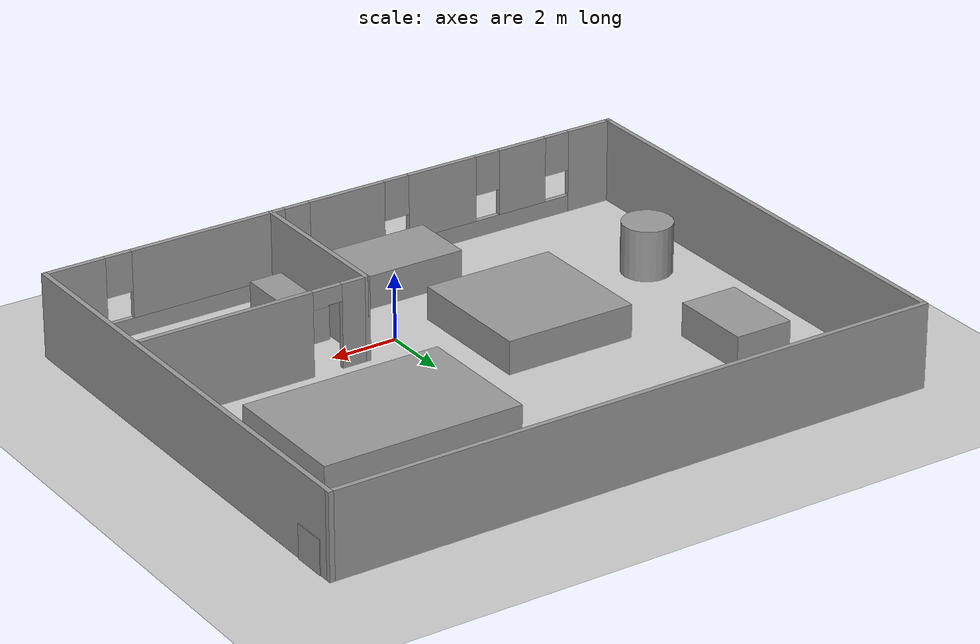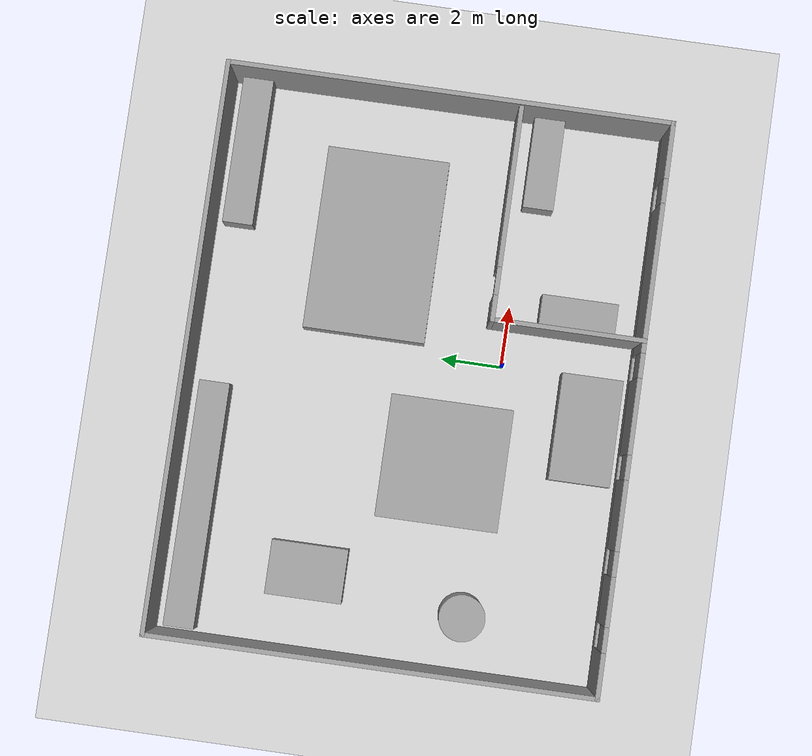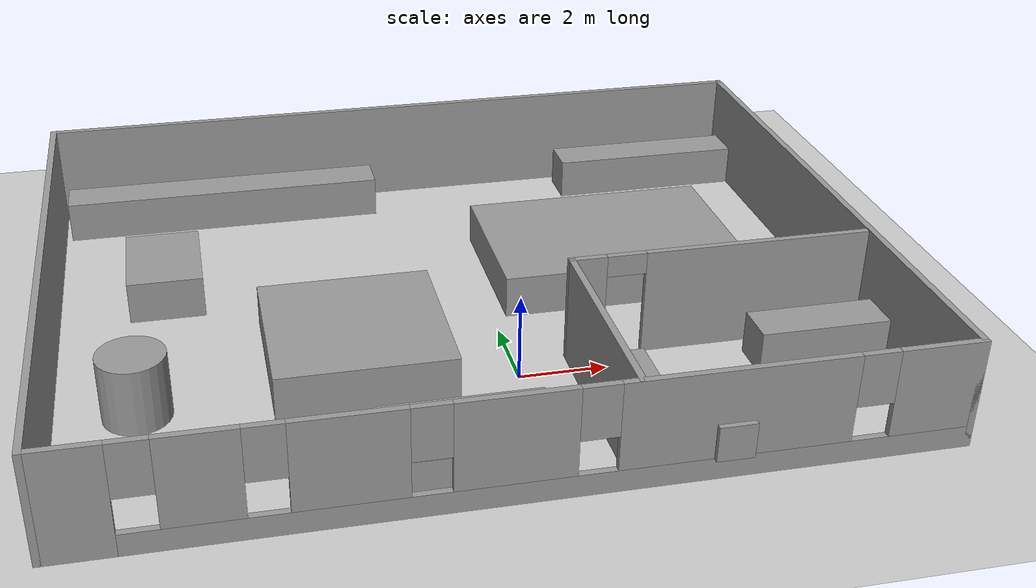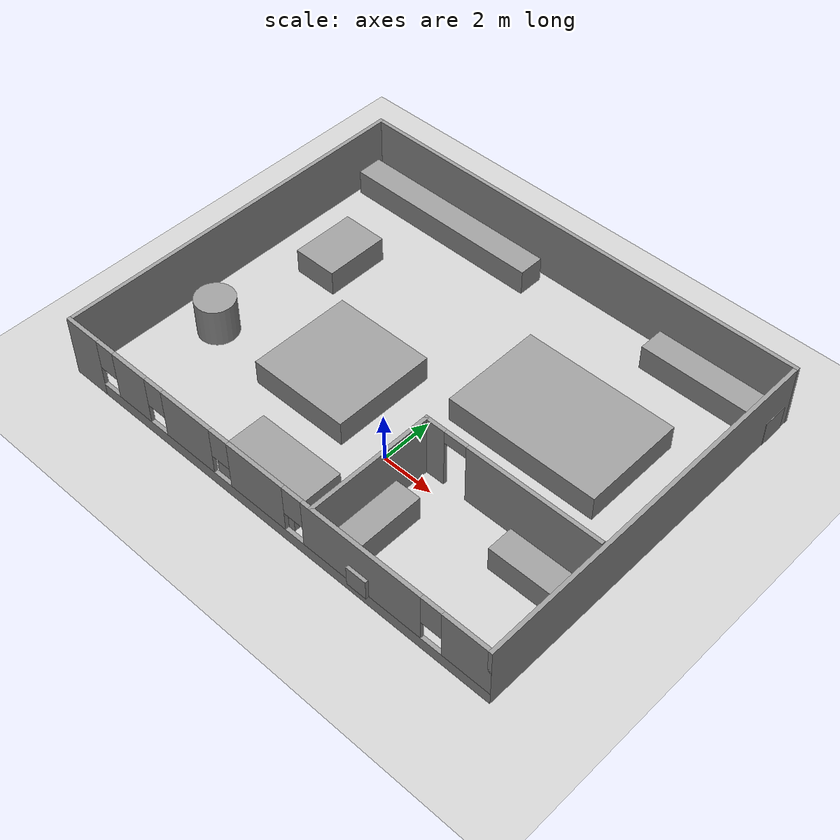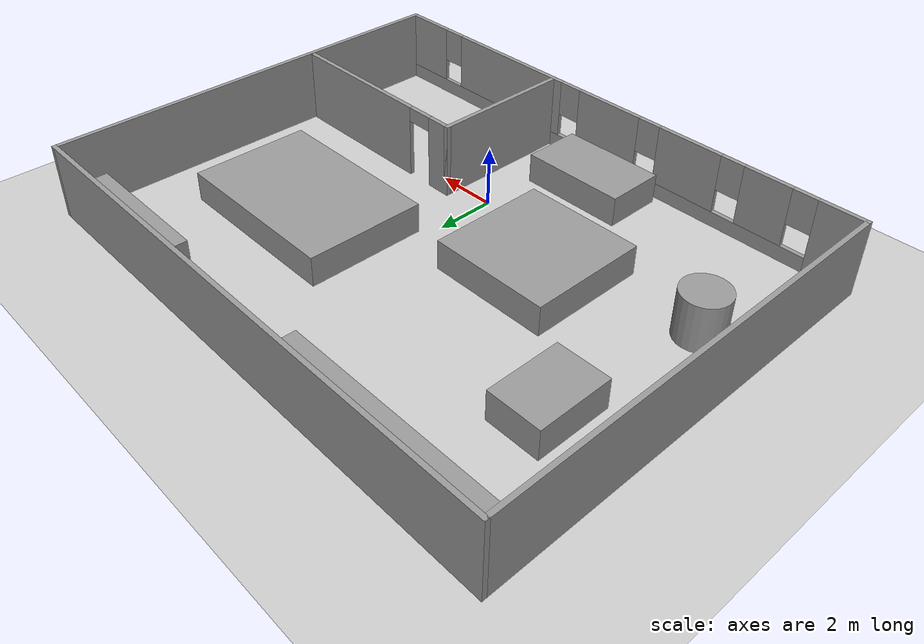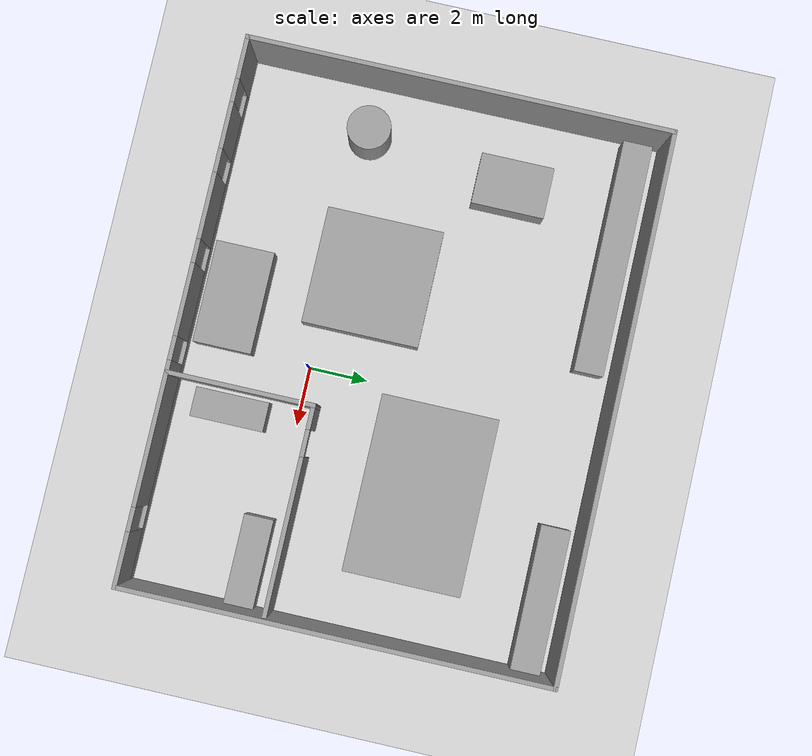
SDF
<sdf version="1.7">
 <world name="default">
  <light name="sun" type="directional">
   <pose>0 0 10 0 -0 0</pose>
   <diffuse>0.8 0.8 0.8 1</diffuse>
   <specular>0.2 0.2 0.2 1</specular>
   <attenuation>
    <range>1000</range>
    <constant>0.9</constant>
    <linear>0.01</linear>
    <quadratic>0.001</quadratic>
   </attenuation>
   <direction>-0.5 0.1 -0.9</direction>
   <spot><inner_angle>0</inner_angle><outer_angle>0</outer_angle><falloff>0</falloff></spot>
  </light>
  <model name="ground_plane">
   <static>1</static>
   <link name="link">
    <collision name="collision">
     <geometry><plane><normal>0 0 1</normal><size>100 100</size></plane></geometry>
     <surface>
      <contact><collide_bitmask>65535</collide_bitmask></contact>
      <friction><ode><mu>100</mu><mu2>50</mu2></ode></friction>
     </surface>
    </collision>
    <visual name="visual">
     <cast_shadows>0</cast_shadows>
     <geometry><plane><normal>0 0 1</normal><size>100 100</size></plane></geometry>
     <material>
      <script><uri>file://media/materials/scripts/gazebo.material</uri><name>Gazebo/Grey</name></script>
     </material>
    </visual>
   </link>
  </model>
  <gravity>0 0 -9.8</gravity>
  <magnetic_field>6e-06 2.3e-05 -4.2e-05</magnetic_field>
  <atmosphere type="adiabatic"/>
  <physics type="ode">
   <max_step_size>0.001</max_step_size>
   <real_time_factor>1</real_time_factor>
   <real_time_update_rate>1000</real_time_update_rate>
  </physics>
  <scene><ambient>0.4 0.4 0.4 1</ambient><background>0.7 0.7 0.7 1</background><shadows>1</shadows></scene>
  <spherical_coordinates>
   <surface_model>EARTH_WGS84</surface_model>
   <latitude_deg>0</latitude_deg>
   <longitude_deg>0</longitude_deg>
   <elevation>0</elevation>
   <heading_deg>0</heading_deg>
  </spherical_coordinates>
  <model name="Lab">
   <pose>-0.873509 2.90139 0 0 -0 0</pose>
   <link name="Wall_10">
    <collision name="Wall_10_Collision">
     <geometry><box><size>14.5 0.15 2.5</size></box></geometry>
     <pose>0 0 1.25 0 -0 0</pose>
    </collision>
    <visual name="Wall_10_Visual">
     <pose>0 0 1.25 0 -0 0</pose>
     <geometry><box><size>14.5 0.15 2.5</size></box></geometry>
     <material>
      <script><uri>file://media/materials/scripts/gazebo.material</uri><name>Gazebo/Grey</name></script>
      <ambient>0.701961 0.701961 0.701961 1</ambient>
     </material>
     <meta><layer>0</layer></meta>
    </visual>
    <pose>9.175 -0 0 0 -0 1.5708</pose>
   </link>
   <link name="Wall_11">
    <collision name="Wall_11_Collision">
     <geometry><box><size>18.5 0.15 2.5</size></box></geometry>
     <pose>0 0 1.25 0 -0 0</pose>
    </collision>
    <visual name="Wall_11_Visual">
     <pose>0 0 1.25 0 -0 0</pose>
     <geometry><box><size>18.5 0.15 2.5</size></box></geometry>
     <material>
      <script><uri>file://media/materials/scripts/gazebo.material</uri><name>Gazebo/Grey</name></script>
      <ambient>0.701961 0.701961 0.701961 1</ambient>
     </material>
     <meta><layer>0</layer></meta>
    </visual>
    <pose>0 7.175 0 0 -0 3.14159</pose>
   </link>
   <link name="Wall_13">
    <collision name="Wall_13_Collision">
     <geometry><box><size>5 0.15 2.5</size></box></geometry>
     <pose>0 0 1.25 0 -0 0</pose>
    </collision>
    <visual name="Wall_13_Visual">
     <pose>0 0 1.25 0 -0 0</pose>
     <geometry><box><size>5 0.15 2.5</size></box></geometry>
     <material>
      <script><uri>file://media/materials/scripts/gazebo.material</uri><name>Gazebo/Grey</name></script>
      <ambient>0.701961 0.701961 0.701961 1</ambient>
     </material>
     <meta><layer>0</layer></meta>
    </visual>
    <pose>2.14737 -4.73989 0 0 -0 1.5708</pose>
   </link>
   <link name="Wall_14">
    <pose>5.57236 -2.31489 0 0 -0 0</pose>
    <visual name="Wall_14_Visual_0">
     <pose>-3.06474 0 1.25 0 -0 0</pose>
     <geometry><box><size>0.870529 0.15 2.5</size></box></geometry>
     <material>
      <script><uri>file://media/materials/scripts/gazebo.material</uri><name>Gazebo/Grey</name></script>
      <ambient>0.701961 0.701961 0.701961 1</ambient>
     </material>
     <meta><layer>0</layer></meta>
    </visual>
    <collision name="Wall_14_Collision_0">
     <geometry><box><size>0.870529 0.15 2.5</size></box></geometry>
     <pose>-3.06474 0 1.25 0 -0 0</pose>
    </collision>
    <visual name="Wall_14_Visual_1">
     <pose>0.885265 0 1.25 0 -0 0</pose>
     <geometry><box><size>5.22947 0.15 2.5</size></box></geometry>
     <material>
      <script><uri>file://media/materials/scripts/gazebo.material</uri><name>Gazebo/Grey</name></script>
      <ambient>0.701961 0.701961 0.701961 1</ambient>
     </material>
     <meta><layer>0</layer></meta>
    </visual>
    <collision name="Wall_14_Collision_1">
     <geometry><box><size>5.22947 0.15 2.5</size></box></geometry>
     <pose>0.885265 0 1.25 0 -0 0</pose>
    </collision>
    <visual name="Wall_14_Visual_2">
     <pose>-2.17947 0 2.25 0 -0 0</pose>
     <geometry><box><size>0.9 0.15 0.5</size></box></geometry>
     <material>
      <script><uri>file://media/materials/scripts/gazebo.material</uri><name>Gazebo/Grey</name></script>
      <ambient>0.701961 0.701961 0.701961 1</ambient>
     </material>
     <meta><layer>0</layer></meta>
    </visual>
    <collision name="Wall_14_Collision_2">
     <geometry><box><size>0.9 0.15 0.5</size></box></geometry>
     <pose>-2.17947 0 2.25 0 -0 0</pose>
    </collision>
   </link>
   <link name="Wall_7">
    <collision name="Wall_7_Collision">
     <geometry><box><size>14.5 0.15 2.5</size></box></geometry>
     <pose>0 0 1.25 0 -0 0</pose>
    </collision>
    <visual name="Wall_7_Visual">
     <pose>0 0 1.25 0 -0 0</pose>
     <geometry><box><size>14.5 0.15 2.5</size></box></geometry>
     <material>
      <script><uri>file://media/materials/scripts/gazebo.material</uri><name>Gazebo/Grey</name></script>
      <ambient>0.701961 0.701961 0.701961 1</ambient>
     </material>
     <meta><layer>0</layer></meta>
    </visual>
    <pose>-9.175 -0 0 0 -0 -1.5708</pose>
   </link>
   <link name="Wall_9">
    <pose>0 -7.175 0 0 -0 0</pose>
    <visual name="Wall_9_Visual_0">
     <pose>-8.4928 0 1.25 0 -0 0</pose>
     <geometry><box><size>1.51439 0.15 2.5</size></box></geometry>
     <material>
      <script><uri>file://media/materials/scripts/gazebo.material</uri><name>Gazebo/Grey</name></script>
      <ambient>0.701961 0.701961 0.701961 1</ambient>
     </material>
     <meta><layer>0</layer></meta>
    </visual>
    <collision name="Wall_9_Collision_0">
     <geometry><box><size>1.51439 0.15 2.5</size></box></geometry>
     <pose>-8.4928 0 1.25 0 -0 0</pose>
    </collision>
    <visual name="Wall_9_Visual_1">
     <pose>0.757197 0 0.25 0 -0 0</pose>
     <geometry><box><size>16.9856 0.15 0.5</size></box></geometry>
     <material>
      <script><uri>file://media/materials/scripts/gazebo.material</uri><name>Gazebo/Grey</name></script>
      <ambient>0.701961 0.701961 0.701961 1</ambient>
     </material>
     <meta><layer>0</layer></meta>
    </visual>
    <collision name="Wall_9_Collision_1">
     <geometry><box><size>16.9856 0.15 0.5</size></box></geometry>
     <pose>0.757197 0 0.25 0 -0 0</pose>
    </collision>
    <visual name="Wall_9_Visual_2">
     <pose>-6.14259 0 1.5 0 -0 0</pose>
     <geometry><box><size>1.58604 0.15 2</size></box></geometry>
     <material>
      <script><uri>file://media/materials/scripts/gazebo.material</uri><name>Gazebo/Grey</name></script>
      <ambient>0.701961 0.701961 0.701961 1</ambient>
     </material>
     <meta><layer>0</layer></meta>
    </visual>
    <collision name="Wall_9_Collision_2">
     <geometry><box><size>1.58604 0.15 2</size></box></geometry>
     <pose>-6.14259 0 1.5 0 -0 0</pose>
    </collision>
    <visual name="Wall_9_Visual_3">
     <pose>-3.42006 0 1.5 0 -0 0</pose>
     <geometry><box><size>2.25902 0.15 2</size></box></geometry>
     <material>
      <script><uri>file://media/materials/scripts/gazebo.material</uri><name>Gazebo/Grey</name></script>
      <ambient>0.701961 0.701961 0.701961 1</ambient>
     </material>
     <meta><layer>0</layer></meta>
    </visual>
    <collision name="Wall_9_Collision_3">
     <geometry><box><size>2.25902 0.15 2</size></box></geometry>
     <pose>-3.42006 0 1.5 0 -0 0</pose>
    </collision>
    <visual name="Wall_9_Visual_4">
     <pose>-0.269264 0 1.5 0 -0 0</pose>
     <geometry><box><size>2.44256 0.15 2</size></box></geometry>
     <material>
      <script><uri>file://media/materials/scripts/gazebo.material</uri><name>Gazebo/Grey</name></script>
      <ambient>0.701961 0.701961 0.701961 1</ambient>
     </material>
     <meta><layer>0</layer></meta>
    </visual>
    <collision name="Wall_9_Collision_4">
     <geometry><box><size>2.44256 0.15 2</size></box></geometry>
     <pose>-0.269264 0 1.5 0 -0 0</pose>
    </collision>
    <visual name="Wall_9_Visual_5">
     <pose>4.16632 0 1.5 0 -0 0</pose>
     <geometry><box><size>4.8286 0.15 2</size></box></geometry>
     <material>
      <script><uri>file://media/materials/scripts/gazebo.material</uri><name>Gazebo/Grey</name></script>
      <ambient>0.701961 0.701961 0.701961 1</ambient>
     </material>
     <meta><layer>0</layer></meta>
    </visual>
    <collision name="Wall_9_Collision_5">
     <geometry><box><size>4.8286 0.15 2</size></box></geometry>
     <pose>4.16632 0 1.5 0 -0 0</pose>
    </collision>
    <visual name="Wall_9_Visual_6">
     <pose>8.31531 0 1.5 0 -0 0</pose>
     <geometry><box><size>1.86938 0.15 2</size></box></geometry>
     <material>
      <script><uri>file://media/materials/scripts/gazebo.material</uri><name>Gazebo/Grey</name></script>
      <ambient>0.701961 0.701961 0.701961 1</ambient>
     </material>
     <meta><layer>0</layer></meta>
    </visual>
    <collision name="Wall_9_Collision_6">
     <geometry><box><size>1.86938 0.15 2</size></box></geometry>
     <pose>8.31531 0 1.5 0 -0 0</pose>
    </collision>
    <visual name="Wall_9_Visual_7">
     <pose>-7.33561 0 1.9 0 -0 0</pose>
     <geometry><box><size>0.8 0.15 1.2</size></box></geometry>
     <material>
      <script><uri>file://media/materials/scripts/gazebo.material</uri><name>Gazebo/Grey</name></script>
      <ambient>0.701961 0.701961 0.701961 1</ambient>
     </material>
     <meta><layer>0</layer></meta>
    </visual>
    <collision name="Wall_9_Collision_7">
     <geometry><box><size>0.8 0.15 1.2</size></box></geometry>
     <pose>-7.33561 0 1.9 0 -0 0</pose>
    </collision>
    <visual name="Wall_9_Visual_8">
     <pose>-4.94957 0 1.9 0 -0 0</pose>
     <geometry><box><size>0.8 0.15 1.2</size></box></geometry>
     <material>
      <script><uri>file://media/materials/scripts/gazebo.material</uri><name>Gazebo/Grey</name></script>
      <ambient>0.701961 0.701961 0.701961 1</ambient>
     </material>
     <meta><layer>0</layer></meta>
    </visual>
    <collision name="Wall_9_Collision_8">
     <geometry><box><size>0.8 0.15 1.2</size></box></geometry>
     <pose>-4.94957 0 1.9 0 -0 0</pose>
    </collision>
    <visual name="Wall_9_Visual_9">
     <pose>-1.89055 0 1.9 0 -0 0</pose>
     <geometry><box><size>0.8 0.15 1.2</size></box></geometry>
     <material>
      <script><uri>file://media/materials/scripts/gazebo.material</uri><name>Gazebo/Grey</name></script>
      <ambient>0.701961 0.701961 0.701961 1</ambient>
     </material>
     <meta><layer>0</layer></meta>
    </visual>
    <collision name="Wall_9_Collision_9">
     <geometry><box><size>0.8 0.15 1.2</size></box></geometry>
     <pose>-1.89055 0 1.9 0 -0 0</pose>
    </collision>
    <visual name="Wall_9_Visual_10">
     <pose>1.35202 0 1.9 0 -0 0</pose>
     <geometry><box><size>0.8 0.15 1.2</size></box></geometry>
     <material>
      <script><uri>file://media/materials/scripts/gazebo.material</uri><name>Gazebo/Grey</name></script>
      <ambient>0.701961 0.701961 0.701961 1</ambient>
     </material>
     <meta><layer>0</layer></meta>
    </visual>
    <collision name="Wall_9_Collision_10">
     <geometry><box><size>0.8 0.15 1.2</size></box></geometry>
     <pose>1.35202 0 1.9 0 -0 0</pose>
    </collision>
    <visual name="Wall_9_Visual_11">
     <pose>6.98062 0 1.9 0 -0 0</pose>
     <geometry><box><size>0.8 0.15 1.2</size></box></geometry>
     <material>
      <script><uri>file://media/materials/scripts/gazebo.material</uri><name>Gazebo/Grey</name></script>
      <ambient>0.701961 0.701961 0.701961 1</ambient>
     </material>
     <meta><layer>0</layer></meta>
    </visual>
    <collision name="Wall_9_Collision_11">
     <geometry><box><size>0.8 0.15 1.2</size></box></geometry>
     <pose>6.98062 0 1.9 0 -0 0</pose>
    </collision>
   </link>
   <link name="Window_5">
    <collision name="Window_5_Collision">
     <geometry><box><size>0.8 0.17 0.8</size></box></geometry>
     <pose>0 0 0.4 0 -0 0</pose>
    </collision>
    <visual name="Window_5_Visual">
     <pose>0 0 0.4 0 -0 0</pose>
     <geometry><box><size>0.8 0.17 0.8</size></box></geometry>
     <material>
      <script><uri>file://media/materials/scripts/gazebo.material</uri><name>Gazebo/Grey</name></script>
     </material>
    </visual>
    <pose>4.10514 -7.28725 0.5 0 -0 0</pose>
   </link>
   <static>1</static>
  </model>
  <model name="lab_world">
   <link name="link">
    <inertial>
     <mass>1</mass>
     <inertia>
      <ixx>0.166667</ixx>
      <ixy>0</ixy>
      <ixz>0</ixz>
      <iyy>0.166667</iyy>
      <iyz>0</iyz>
      <izz>0.166667</izz>
     </inertia>
    </inertial>
    <pose>3.37169 0.101448 0 0 -0 0</pose>
    <visual name="visual">
     <geometry><box><size>8 1 1</size></box></geometry>
     <material>
      <script><name>Gazebo/Grey</name><uri>file://media/materials/scripts/gazebo.material</uri></script>
      <shader type="pixel"><normal_map>__default__</normal_map></shader>
      <ambient>0.3 0.3 0.3 1</ambient>
      <diffuse>0.7 0.7 0.7 1</diffuse>
      <specular>0.01 0.01 0.01 1</specular>
      <emissive>0 0 0 1</emissive>
     </material>
    </visual>
    <collision name="collision">
     <geometry><box><size>1 1 1</size></box></geometry>
     <surface>
      <friction>
       <ode><mu>1</mu><mu2>1</mu2><fdir1>0 0 0</fdir1><slip1>0</slip1><slip2>0</slip2></ode>
       <torsional>
        <coefficient>1</coefficient>
        <patch_radius>0</patch_radius>
        <surface_radius>0</surface_radius>
        <use_patch_radius>1</use_patch_radius>
        <ode><slip>0</slip></ode>
       </torsional>
      </friction>
      <bounce><restitution_coefficient>0</restitution_coefficient><threshold>1e+06</threshold></bounce>
      <contact>
       <collide_without_contact>0</collide_without_contact>
       <collide_without_contact_bitmask>1</collide_without_contact_bitmask>
       <collide_bitmask>1</collide_bitmask>
       <ode>
        <soft_cfm>0</soft_cfm>
        <soft_erp>0.2</soft_erp>
        <kp>1e+13</kp>
        <kd>1</kd>
        <max_vel>0.01</max_vel>
        <min_depth>0</min_depth>
       </ode>
       <bullet>
        <split_impulse>1</split_impulse>
        <split_impulse_penetration_threshold>-0.01</split_impulse_penetration_threshold>
        <soft_cfm>0</soft_cfm>
        <soft_erp>0.2</soft_erp>
        <kp>1e+13</kp>
        <kd>1</kd>
       </bullet>
      </contact>
     </surface>
    </collision>
   </link>
   <link name="link_0">
    <inertial>
     <mass>1</mass>
     <inertia>
      <ixx>0.166667</ixx>
      <ixy>0</ixy>
      <ixz>0</ixz>
      <iyy>0.166667</iyy>
      <iyz>0</iyz>
      <izz>0.166667</izz>
     </inertia>
    </inertial>
    <pose>7.48521 -12.0445 0 0 -0 0</pose>
    <visual name="visual">
     <geometry><box><size>3.5 2 1</size></box></geometry>
     <material>
      <lighting>1</lighting>
      <script><uri>file://media/materials/scripts/gazebo.material</uri><name>Gazebo/Grey</name></script>
      <shader type="pixel"><normal_map>__default__</normal_map></shader>
      <ambient>0.3 0.3 0.3 1</ambient>
      <diffuse>0.7 0.7 0.7 1</diffuse>
      <specular>0.01 0.01 0.01 1</specular>
      <emissive>0 0 0 1</emissive>
     </material>
    </visual>
    <collision name="collision">
     <geometry><box><size>1 1 1</size></box></geometry>
     <surface>
      <friction>
       <ode><mu>1</mu><mu2>1</mu2><fdir1>0 0 0</fdir1><slip1>0</slip1><slip2>0</slip2></ode>
       <torsional>
        <coefficient>1</coefficient>
        <patch_radius>0</patch_radius>
        <surface_radius>0</surface_radius>
        <use_patch_radius>1</use_patch_radius>
        <ode><slip>0</slip></ode>
       </torsional>
      </friction>
      <bounce><restitution_coefficient>0</restitution_coefficient><threshold>1e+06</threshold></bounce>
      <contact>
       <collide_without_contact>0</collide_without_contact>
       <collide_without_contact_bitmask>1</collide_without_contact_bitmask>
       <collide_bitmask>1</collide_bitmask>
       <ode>
        <soft_cfm>0</soft_cfm>
        <soft_erp>0.2</soft_erp>
        <kp>1e+13</kp>
        <kd>1</kd>
        <max_vel>0.01</max_vel>
        <min_depth>0</min_depth>
       </ode>
       <bullet>
        <split_impulse>1</split_impulse>
        <split_impulse_penetration_threshold>-0.01</split_impulse_penetration_threshold>
        <soft_cfm>0</soft_cfm>
        <soft_erp>0.2</soft_erp>
        <kp>1e+13</kp>
        <kd>1</kd>
       </bullet>
      </contact>
     </surface>
    </collision>
   </link>
   <link name="link_1">
    <inertial>
     <mass>1</mass>
     <inertia>
      <ixx>0.166667</ixx>
      <ixy>0</ixy>
      <ixz>0</ixz>
      <iyy>0.166667</iyy>
      <iyz>0</iyz>
      <izz>0.166667</izz>
     </inertia>
    </inertial>
    <pose>5.78992 -7.64433 0 0 -0 0</pose>
    <visual name="visual">
     <geometry><box><size>4 4 1</size></box></geometry>
     <material>
      <lighting>1</lighting>
      <script><uri>file://media/materials/scripts/gazebo.material</uri><name>Gazebo/Grey</name></script>
      <shader type="pixel"><normal_map>__default__</normal_map></shader>
      <ambient>0.3 0.3 0.3 1</ambient>
      <diffuse>0.7 0.7 0.7 1</diffuse>
      <specular>0.01 0.01 0.01 1</specular>
      <emissive>0 0 0 1</emissive>
     </material>
    </visual>
    <collision name="collision">
     <geometry><box><size>1 1 1</size></box></geometry>
     <surface>
      <friction>
       <ode><mu>1</mu><mu2>1</mu2><fdir1>0 0 0</fdir1><slip1>0</slip1><slip2>0</slip2></ode>
       <torsional>
        <coefficient>1</coefficient>
        <patch_radius>0</patch_radius>
        <surface_radius>0</surface_radius>
        <use_patch_radius>1</use_patch_radius>
        <ode><slip>0</slip></ode>
       </torsional>
      </friction>
      <bounce><restitution_coefficient>0</restitution_coefficient><threshold>1e+06</threshold></bounce>
      <contact>
       <collide_without_contact>0</collide_without_contact>
       <collide_without_contact_bitmask>1</collide_without_contact_bitmask>
       <collide_bitmask>1</collide_bitmask>
       <ode>
        <soft_cfm>0</soft_cfm>
        <soft_erp>0.2</soft_erp>
        <kp>1e+13</kp>
        <kd>1</kd>
        <max_vel>0.01</max_vel>
        <min_depth>0</min_depth>
       </ode>
       <bullet>
        <split_impulse>1</split_impulse>
        <split_impulse_penetration_threshold>-0.01</split_impulse_penetration_threshold>
        <soft_cfm>0</soft_cfm>
        <soft_erp>0.2</soft_erp>
        <kp>1e+13</kp>
        <kd>1</kd>
       </bullet>
      </contact>
     </surface>
    </collision>
   </link>
   <link name="link_10">
    <inertial>
     <mass>1</mass>
     <inertia>
      <ixx>0.166667</ixx>
      <ixy>0</ixy>
      <ixz>0</ixz>
      <iyy>0.166667</iyy>
      <iyz>0</iyz>
      <izz>0.166667</izz>
     </inertia>
    </inertial>
    <pose>11.1797 -11.3057 0.022995 0 -0 0</pose>
    <visual name="visual">
     <geometry><box><size>1 2.5 1</size></box></geometry>
     <material>
      <lighting>1</lighting>
      <script><uri>file://media/materials/scripts/gazebo.material</uri><name>Gazebo/Grey</name></script>
      <shader type="pixel"><normal_map>__default__</normal_map></shader>
      <ambient>0.3 0.3 0.3 1</ambient>
      <diffuse>0.7 0.7 0.7 1</diffuse>
      <specular>0.01 0.01 0.01 1</specular>
      <emissive>0 0 0 1</emissive>
     </material>
    </visual>
    <collision name="collision">
     <geometry><box><size>1 1 1</size></box></geometry>
     <surface>
      <friction>
       <ode><mu>1</mu><mu2>1</mu2><fdir1>0 0 0</fdir1><slip1>0</slip1><slip2>0</slip2></ode>
       <torsional>
        <coefficient>1</coefficient>
        <patch_radius>0</patch_radius>
        <surface_radius>0</surface_radius>
        <use_patch_radius>1</use_patch_radius>
        <ode><slip>0</slip></ode>
       </torsional>
      </friction>
      <bounce><restitution_coefficient>0</restitution_coefficient><threshold>1e+06</threshold></bounce>
      <contact>
       <collide_without_contact>0</collide_without_contact>
       <collide_without_contact_bitmask>1</collide_without_contact_bitmask>
       <collide_bitmask>1</collide_bitmask>
       <ode>
        <soft_cfm>0</soft_cfm>
        <soft_erp>0.2</soft_erp>
        <kp>1e+13</kp>
        <kd>1</kd>
        <max_vel>0.01</max_vel>
        <min_depth>0</min_depth>
       </ode>
       <bullet>
        <split_impulse>1</split_impulse>
        <split_impulse_penetration_threshold>-0.01</split_impulse_penetration_threshold>
        <soft_cfm>0</soft_cfm>
        <soft_erp>0.2</soft_erp>
        <kp>1e+13</kp>
        <kd>1</kd>
       </bullet>
      </contact>
     </surface>
    </collision>
   </link>
   <link name="link_3">
    <inertial>
     <mass>1.17268</mass>
     <inertia>
      <ixx>0.195446</ixx>
      <ixy>0</ixy>
      <ixz>0</ixz>
      <iyy>0.232109</iyy>
      <iyz>0</iyz>
      <izz>0.232109</izz>
     </inertia>
    </inertial>
    <pose>1.71359 -3.73052 0 0 -0 0</pose>
    <visual name="visual">
     <geometry><box><size>1.75902 2.5 1</size></box></geometry>
     <material>
      <lighting>1</lighting>
      <script><uri>file://media/materials/scripts/gazebo.material</uri><name>Gazebo/Grey</name></script>
      <shader type="pixel"><normal_map>__default__</normal_map></shader>
      <ambient>0.3 0.3 0.3 1</ambient>
      <diffuse>0.7 0.7 0.7 1</diffuse>
      <specular>0.01 0.01 0.01 1</specular>
      <emissive>0 0 0 1</emissive>
     </material>
    </visual>
    <collision name="collision">
     <geometry><box><size>1.17268 1 1</size></box></geometry>
     <surface>
      <friction>
       <ode><mu>1</mu><mu2>1</mu2><fdir1>0 0 0</fdir1><slip1>0</slip1><slip2>0</slip2></ode>
       <torsional>
        <coefficient>1</coefficient>
        <patch_radius>0</patch_radius>
        <surface_radius>0</surface_radius>
        <use_patch_radius>1</use_patch_radius>
        <ode><slip>0</slip></ode>
       </torsional>
      </friction>
      <bounce><restitution_coefficient>0</restitution_coefficient><threshold>1e+06</threshold></bounce>
      <contact>
       <collide_without_contact>0</collide_without_contact>
       <collide_without_contact_bitmask>1</collide_without_contact_bitmask>
       <collide_bitmask>1</collide_bitmask>
       <ode>
        <soft_cfm>0</soft_cfm>
        <soft_erp>0.2</soft_erp>
        <kp>1e+13</kp>
        <kd>1</kd>
        <max_vel>0.01</max_vel>
        <min_depth>0</min_depth>
       </ode>
       <bullet>
        <split_impulse>1</split_impulse>
        <split_impulse_penetration_threshold>-0.01</split_impulse_penetration_threshold>
        <soft_cfm>0</soft_cfm>
        <soft_erp>0.2</soft_erp>
        <kp>1e+13</kp>
        <kd>1</kd>
       </bullet>
      </contact>
     </surface>
    </collision>
   </link>
   <link name="link_4">
    <inertial>
     <mass>1</mass>
     <inertia>
      <ixx>0.166667</ixx>
      <ixy>0</ixy>
      <ixz>0</ixz>
      <iyy>0.166667</iyy>
      <iyz>0</iyz>
      <izz>0.166667</izz>
     </inertia>
    </inertial>
    <pose>12.536 -4.46478 0 0 -0 0</pose>
    <visual name="visual">
     <geometry><box><size>6 4 1</size></box></geometry>
     <material>
      <lighting>1</lighting>
      <script><uri>file://media/materials/scripts/gazebo.material</uri><name>Gazebo/Grey</name></script>
      <shader type="pixel"><normal_map>__default__</normal_map></shader>
      <ambient>0.3 0.3 0.3 1</ambient>
      <diffuse>0.7 0.7 0.7 1</diffuse>
      <specular>0.01 0.01 0.01 1</specular>
      <emissive>0 0 0 1</emissive>
     </material>
    </visual>
    <collision name="collision">
     <geometry><box><size>1 1 1</size></box></geometry>
     <surface>
      <friction>
       <ode><mu>1</mu><mu2>1</mu2><fdir1>0 0 0</fdir1><slip1>0</slip1><slip2>0</slip2></ode>
       <torsional>
        <coefficient>1</coefficient>
        <patch_radius>0</patch_radius>
        <surface_radius>0</surface_radius>
        <use_patch_radius>1</use_patch_radius>
        <ode><slip>0</slip></ode>
       </torsional>
      </friction>
      <bounce><restitution_coefficient>0</restitution_coefficient><threshold>1e+06</threshold></bounce>
      <contact>
       <collide_without_contact>0</collide_without_contact>
       <collide_without_contact_bitmask>1</collide_without_contact_bitmask>
       <collide_bitmask>1</collide_bitmask>
       <ode>
        <soft_cfm>0</soft_cfm>
        <soft_erp>0.2</soft_erp>
        <kp>1e+13</kp>
        <kd>1</kd>
        <max_vel>0.01</max_vel>
        <min_depth>0</min_depth>
       </ode>
       <bullet>
        <split_impulse>1</split_impulse>
        <split_impulse_penetration_threshold>-0.01</split_impulse_penetration_threshold>
        <soft_cfm>0</soft_cfm>
        <soft_erp>0.2</soft_erp>
        <kp>1e+13</kp>
        <kd>1</kd>
       </bullet>
      </contact>
     </surface>
    </collision>
   </link>
   <link name="link_7">
    <inertial>
     <mass>1</mass>
     <inertia>
      <ixx>0.166667</ixx>
      <ixy>0</ixy>
      <ixz>0</ixz>
      <iyy>0.166667</iyy>
      <iyz>0</iyz>
      <izz>0.166667</izz>
     </inertia>
    </inertial>
    <pose>15.0931 0.132884 0 0 -0 0</pose>
    <visual name="visual">
     <geometry><box><size>5 1 1</size></box></geometry>
     <material>
      <lighting>1</lighting>
      <script><uri>file://media/materials/scripts/gazebo.material</uri><name>Gazebo/Grey</name></script>
      <shader type="pixel"><normal_map>__default__</normal_map></shader>
      <ambient>0.3 0.3 0.3 1</ambient>
      <diffuse>0.7 0.7 0.7 1</diffuse>
      <specular>0.01 0.01 0.01 1</specular>
      <emissive>0 0 0 1</emissive>
     </material>
    </visual>
    <collision name="collision">
     <geometry><box><size>1 1 1</size></box></geometry>
     <surface>
      <friction>
       <ode><mu>1</mu><mu2>1</mu2><fdir1>0 0 0</fdir1><slip1>0</slip1><slip2>0</slip2></ode>
       <torsional>
        <coefficient>1</coefficient>
        <patch_radius>0</patch_radius>
        <surface_radius>0</surface_radius>
        <use_patch_radius>1</use_patch_radius>
        <ode><slip>0</slip></ode>
       </torsional>
      </friction>
      <bounce><restitution_coefficient>0</restitution_coefficient><threshold>1e+06</threshold></bounce>
      <contact>
       <collide_without_contact>0</collide_without_contact>
       <collide_without_contact_bitmask>1</collide_without_contact_bitmask>
       <collide_bitmask>1</collide_bitmask>
       <ode>
        <soft_cfm>0</soft_cfm>
        <soft_erp>0.2</soft_erp>
        <kp>1e+13</kp>
        <kd>1</kd>
        <max_vel>0.01</max_vel>
        <min_depth>0</min_depth>
       </ode>
       <bullet>
        <split_impulse>1</split_impulse>
        <split_impulse_penetration_threshold>-0.01</split_impulse_penetration_threshold>
        <soft_cfm>0</soft_cfm>
        <soft_erp>0.2</soft_erp>
        <kp>1e+13</kp>
        <kd>1</kd>
       </bullet>
      </contact>
     </surface>
    </collision>
   </link>
   <link name="link_8">
    <inertial>
     <mass>1</mass>
     <inertia><ixx>0.145833</ixx><ixy>0</ixy><ixz>0</ixz><iyy>0.145833</iyy><iyz>0</iyz><izz>0.125</izz></inertia>
    </inertial>
    <pose>0.966522 -8.87218 0 0 -0 0</pose>
    <visual name="visual">
     <geometry><cylinder><radius>0.75</radius><length>2</length></cylinder></geometry>
     <material>
      <lighting>1</lighting>
      <script><uri>file://media/materials/scripts/gazebo.material</uri><name>Gazebo/Grey</name></script>
      <shader type="pixel"><normal_map>__default__</normal_map></shader>
      <ambient>0.3 0.3 0.3 1</ambient>
      <diffuse>0.7 0.7 0.7 1</diffuse>
      <specular>0.01 0.01 0.01 1</specular>
      <emissive>0 0 0 1</emissive>
     </material>
    </visual>
    <collision name="collision">
     <geometry><cylinder><radius>0.5</radius><length>1</length></cylinder></geometry>
     <surface>
      <friction>
       <ode><mu>1</mu><mu2>1</mu2><fdir1>0 0 0</fdir1><slip1>0</slip1><slip2>0</slip2></ode>
       <torsional>
        <coefficient>1</coefficient>
        <patch_radius>0</patch_radius>
        <surface_radius>0</surface_radius>
        <use_patch_radius>1</use_patch_radius>
        <ode><slip>0</slip></ode>
       </torsional>
      </friction>
      <bounce><restitution_coefficient>0</restitution_coefficient><threshold>1e+06</threshold></bounce>
      <contact>
       <collide_without_contact>0</collide_without_contact>
       <collide_without_contact_bitmask>1</collide_without_contact_bitmask>
       <collide_bitmask>1</collide_bitmask>
       <ode>
        <soft_cfm>0</soft_cfm>
        <soft_erp>0.2</soft_erp>
        <kp>1e+13</kp>
        <kd>1</kd>
        <max_vel>0.01</max_vel>
        <min_depth>0</min_depth>
       </ode>
       <bullet>
        <split_impulse>1</split_impulse>
        <split_impulse_penetration_threshold>-0.01</split_impulse_penetration_threshold>
        <soft_cfm>0</soft_cfm>
        <soft_erp>0.2</soft_erp>
        <kp>1e+13</kp>
        <kd>1</kd>
       </bullet>
      </contact>
     </surface>
    </collision>
   </link>
   <link name="link_9">
    <inertial>
     <mass>1</mass>
     <inertia>
      <ixx>0.166667</ixx>
      <ixy>0</ixy>
      <ixz>0</ixz>
      <iyy>0.166667</iyy>
      <iyz>0</iyz>
      <izz>0.166667</izz>
     </inertia>
    </inertial>
    <pose>15.928 -9.52893 0 0 -0 0</pose>
    <visual name="visual">
     <geometry><box><size>3 1 1</size></box></geometry>
     <material>
      <lighting>1</lighting>
      <script><uri>file://media/materials/scripts/gazebo.material</uri><name>Gazebo/Grey</name></script>
      <shader type="pixel"><normal_map>__default__</normal_map></shader>
      <ambient>0.3 0.3 0.3 1</ambient>
      <diffuse>0.7 0.7 0.7 1</diffuse>
      <specular>0.01 0.01 0.01 1</specular>
      <emissive>0 0 0 1</emissive>
     </material>
    </visual>
    <collision name="collision">
     <geometry><box><size>1 1 1</size></box></geometry>
     <surface>
      <friction>
       <ode><mu>1</mu><mu2>1</mu2><fdir1>0 0 0</fdir1><slip1>0</slip1><slip2>0</slip2></ode>
       <torsional>
        <coefficient>1</coefficient>
        <patch_radius>0</patch_radius>
        <surface_radius>0</surface_radius>
        <use_patch_radius>1</use_patch_radius>
        <ode><slip>0</slip></ode>
       </torsional>
      </friction>
      <bounce><restitution_coefficient>0</restitution_coefficient><threshold>1e+06</threshold></bounce>
      <contact>
       <collide_without_contact>0</collide_without_contact>
       <collide_without_contact_bitmask>1</collide_without_contact_bitmask>
       <collide_bitmask>1</collide_bitmask>
       <ode>
        <soft_cfm>0</soft_cfm>
        <soft_erp>0.2</soft_erp>
        <kp>1e+13</kp>
        <kd>1</kd>
        <max_vel>0.01</max_vel>
        <min_depth>0</min_depth>
       </ode>
       <bullet>
        <split_impulse>1</split_impulse>
        <split_impulse_penetration_threshold>-0.01</split_impulse_penetration_threshold>
        <soft_cfm>0</soft_cfm>
        <soft_erp>0.2</soft_erp>
        <kp>1e+13</kp>
        <kd>1</kd>
       </bullet>
      </contact>
     </surface>
    </collision>
   </link>
   <static>0</static>
   <pose>-9.19619 9.08459 0.5 0 -0 0</pose>
  </model>
 </world>
</sdf>
